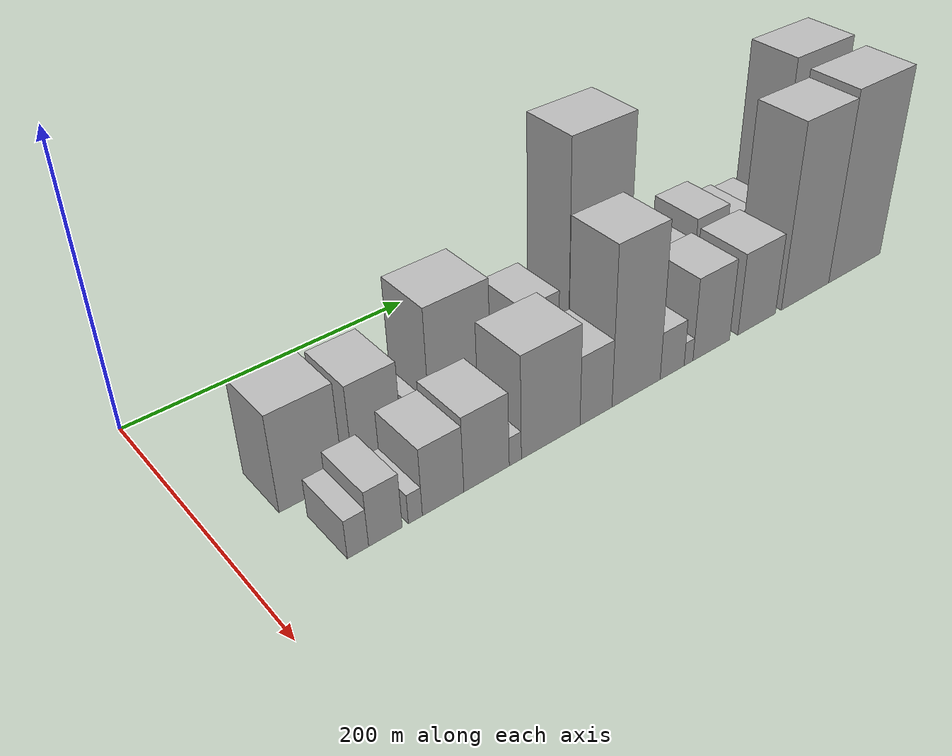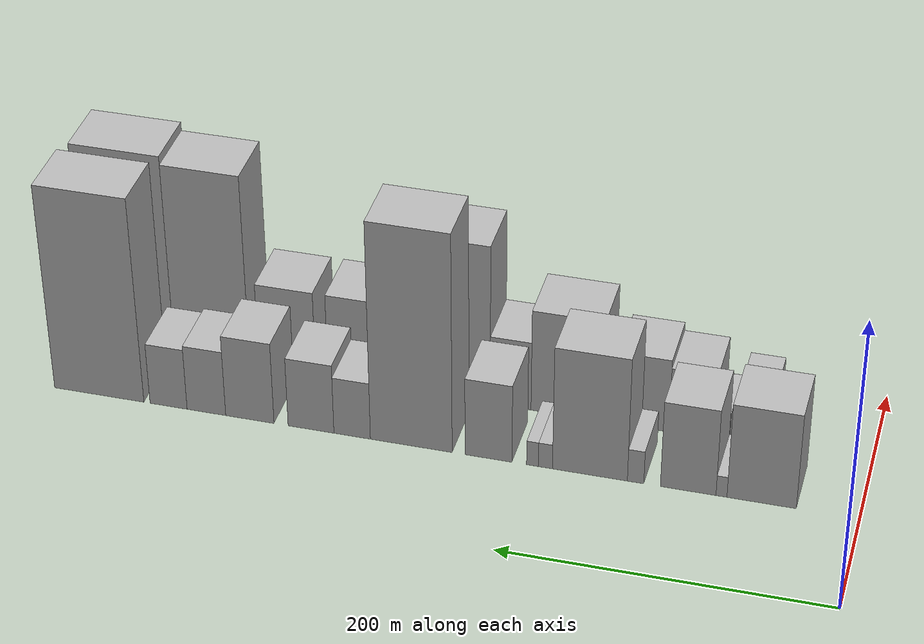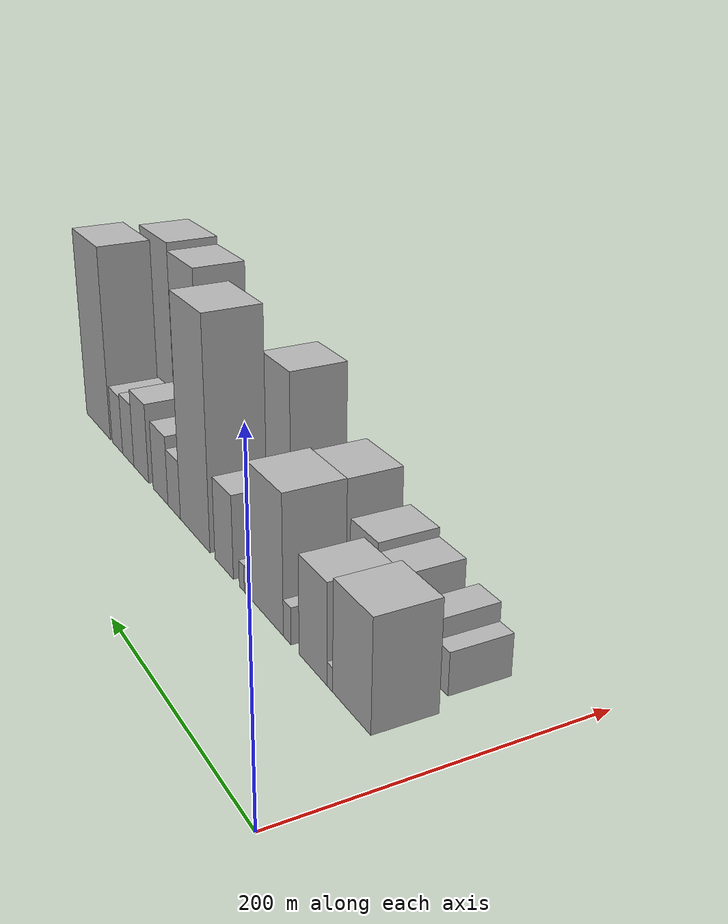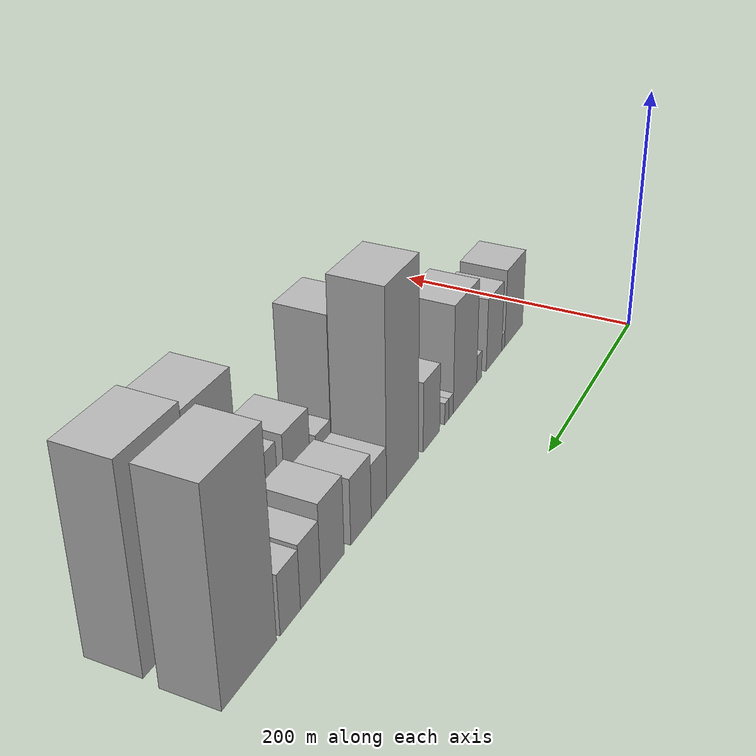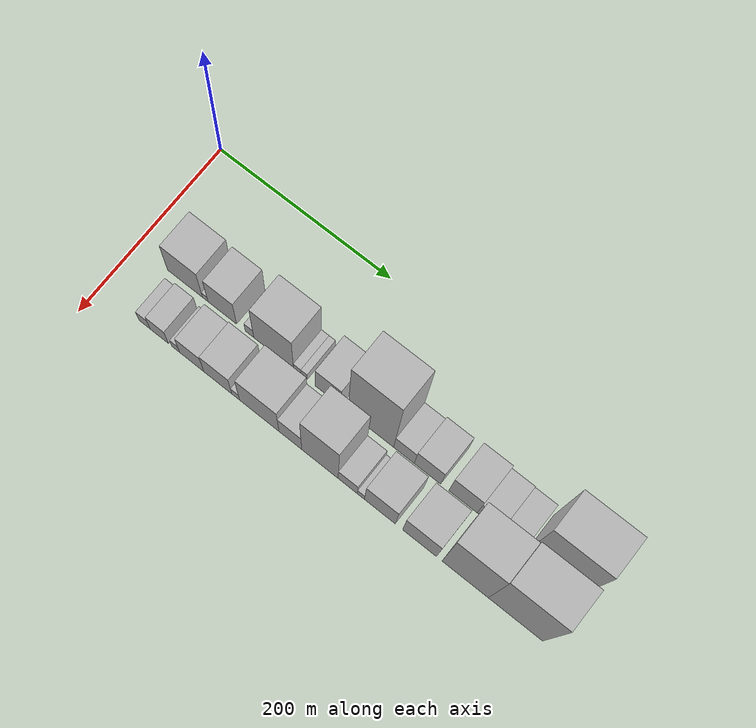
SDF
<sdf version="1.6">
 <world name="default">
  <model name="building_14">
   <static>1</static>
   <pose>100.0000 57.9399 0 0.000000 0.000000 0.000000</pose>
   <link name="link">
    <pose>0 0 34.50 0 0 0</pose>
    <collision name="collision"><geometry><box><size>40.0000 41.1926 69.0000</size></box></geometry></collision>
    <visual name="visual">
     <cast_shadows>0</cast_shadows>
     <geometry><box><size>40.0000 41.1926 69.0000</size></box></geometry>
     <material>
      <script>
       <uri>model://HANNAS_wall/materials/scripts</uri>
       <uri>model://HANNAS_wall/materials/textures</uri>
       <name>vrc/HANNAS_wall</name>
      </script>
     </material>
    </visual>
   </link>
  </model>
  <model name="building_15">
   <static>1</static>
   <pose>100.0000 81.8253 0 0.000000 0.000000 0.000000</pose>
   <link name="link">
    <pose>0 0 7.50 0 0 0</pose>
    <collision name="collision"><geometry><box><size>40.0000 6.5783 15.0000</size></box></geometry></collision>
    <visual name="visual">
     <cast_shadows>0</cast_shadows>
     <geometry><box><size>40.0000 6.5783 15.0000</size></box></geometry>
     <material>
      <script>
       <uri>model://HANNAS_wall/materials/scripts</uri>
       <uri>model://HANNAS_wall/materials/textures</uri>
       <name>vrc/HANNAS_wall</name>
      </script>
     </material>
    </visual>
   </link>
  </model>
  <model name="building_16">
   <static>1</static>
   <pose>100.0000 101.7952 0 0.000000 0.000000 0.000000</pose>
   <link name="link">
    <pose>0 0 31.50 0 0 0</pose>
    <collision name="collision"><geometry><box><size>40.0000 33.3615 63.0000</size></box></geometry></collision>
    <visual name="visual">
     <cast_shadows>0</cast_shadows>
     <geometry><box><size>40.0000 33.3615 63.0000</size></box></geometry>
     <material>
      <script>
       <uri>model://HANNAS_wall/materials/scripts</uri>
       <uri>model://HANNAS_wall/materials/textures</uri>
       <name>vrc/HANNAS_wall</name>
      </script>
     </material>
    </visual>
   </link>
  </model>
  <model name="building_17">
   <static>1</static>
   <pose>100.0000 133.4512 0 0.000000 0.000000 0.000000</pose>
   <link name="link">
    <pose>0 0 12.00 0 0 0</pose>
    <collision name="collision"><geometry><box><size>40.0000 9.9504 24.0000</size></box></geometry></collision>
    <visual name="visual">
     <cast_shadows>0</cast_shadows>
     <geometry><box><size>40.0000 9.9504 24.0000</size></box></geometry>
     <material>
      <script>
       <uri>model://HANNAS_wall/materials/scripts</uri>
       <uri>model://HANNAS_wall/materials/textures</uri>
       <name>vrc/HANNAS_wall</name>
      </script>
     </material>
    </visual>
   </link>
  </model>
  <model name="building_18">
   <static>1</static>
   <pose>100.0000 161.2609 0 0.000000 0.000000 0.000000</pose>
   <link name="link">
    <pose>0 0 45.00 0 0 0</pose>
    <collision name="collision"><geometry><box><size>40.0000 45.6691 90.0000</size></box></geometry></collision>
    <visual name="visual">
     <cast_shadows>0</cast_shadows>
     <geometry><box><size>40.0000 45.6691 90.0000</size></box></geometry>
     <material>
      <script>
       <uri>model://HANNAS_wall/materials/scripts</uri>
       <uri>model://HANNAS_wall/materials/textures</uri>
       <name>vrc/HANNAS_wall</name>
      </script>
     </material>
    </visual>
   </link>
  </model>
  <model name="building_19">
   <static>1</static>
   <pose>100.0000 188.3970 0 0.000000 0.000000 0.000000</pose>
   <link name="link">
    <pose>0 0 9.00 0 0 0</pose>
    <collision name="collision"><geometry><box><size>40.0000 8.6031 18.0000</size></box></geometry></collision>
    <visual name="visual">
     <cast_shadows>0</cast_shadows>
     <geometry><box><size>40.0000 8.6031 18.0000</size></box></geometry>
     <material>
      <script>
       <uri>model://HANNAS_wall/materials/scripts</uri>
       <uri>model://HANNAS_wall/materials/textures</uri>
       <name>vrc/HANNAS_wall</name>
      </script>
     </material>
    </visual>
   </link>
  </model>
  <model name="building_20">
   <static>1</static>
   <pose>100.0000 196.3335 0 0.000000 0.000000 0.000000</pose>
   <link name="link">
    <pose>0 0 9.00 0 0 0</pose>
    <collision name="collision"><geometry><box><size>40.0000 7.2699 18.0000</size></box></geometry></collision>
    <visual name="visual">
     <cast_shadows>0</cast_shadows>
     <geometry><box><size>40.0000 7.2699 18.0000</size></box></geometry>
     <material>
      <script>
       <uri>model://HANNAS_wall/materials/scripts</uri>
       <uri>model://HANNAS_wall/materials/textures</uri>
       <name>vrc/HANNAS_wall</name>
      </script>
     </material>
    </visual>
   </link>
  </model>
  <model name="building_21">
   <static>1</static>
   <pose>100.0000 223.4659 0 0.000000 0.000000 0.000000</pose>
   <link name="link">
    <pose>0 0 28.50 0 0 0</pose>
    <collision name="collision"><geometry><box><size>40.0000 28.9950 57.0000</size></box></geometry></collision>
    <visual name="visual">
     <cast_shadows>0</cast_shadows>
     <geometry><box><size>40.0000 28.9950 57.0000</size></box></geometry>
     <material>
      <script>
       <uri>model://HANNAS_wall/materials/scripts</uri>
       <uri>model://HANNAS_wall/materials/textures</uri>
       <name>vrc/HANNAS_wall</name>
      </script>
     </material>
    </visual>
   </link>
  </model>
  <model name="building_22">
   <static>1</static>
   <pose>100.0000 271.5565 0 0.000000 0.000000 0.000000</pose>
   <link name="link">
    <pose>0 0 79.50 0 0 0</pose>
    <collision name="collision"><geometry><box><size>40.0000 51.1862 159.0000</size></box></geometry></collision>
    <visual name="visual">
     <cast_shadows>0</cast_shadows>
     <geometry><box><size>40.0000 51.1862 159.0000</size></box></geometry>
     <material>
      <script>
       <uri>model://HANNAS_wall/materials/scripts</uri>
       <uri>model://HANNAS_wall/materials/textures</uri>
       <name>vrc/HANNAS_wall</name>
      </script>
     </material>
    </visual>
   </link>
  </model>
  <model name="building_23">
   <static>1</static>
   <pose>100.0000 308.6644 0 0.000000 0.000000 0.000000</pose>
   <link name="link">
    <pose>0 0 21.00 0 0 0</pose>
    <collision name="collision"><geometry><box><size>40.0000 23.0295 42.0000</size></box></geometry></collision>
    <visual name="visual">
     <cast_shadows>0</cast_shadows>
     <geometry><box><size>40.0000 23.0295 42.0000</size></box></geometry>
     <material>
      <script>
       <uri>model://HANNAS_wall/materials/scripts</uri>
       <uri>model://HANNAS_wall/materials/textures</uri>
       <name>vrc/HANNAS_wall</name>
      </script>
     </material>
    </visual>
   </link>
  </model>
  <model name="building_24">
   <static>1</static>
   <pose>100.0000 334.7351 0 0.000000 0.000000 0.000000</pose>
   <link name="link">
    <pose>0 0 25.50 0 0 0</pose>
    <collision name="collision"><geometry><box><size>40.0000 29.1119 51.0000</size></box></geometry></collision>
    <visual name="visual">
     <cast_shadows>0</cast_shadows>
     <geometry><box><size>40.0000 29.1119 51.0000</size></box></geometry>
     <material>
      <script>
       <uri>model://HANNAS_wall/materials/scripts</uri>
       <uri>model://HANNAS_wall/materials/textures</uri>
       <name>vrc/HANNAS_wall</name>
      </script>
     </material>
    </visual>
   </link>
  </model>
  <model name="building_25">
   <static>1</static>
   <pose>100.0000 373.7782 0 0.000000 0.000000 0.000000</pose>
   <link name="link">
    <pose>0 0 30.00 0 0 0</pose>
    <collision name="collision"><geometry><box><size>40.0000 30.9744 60.0000</size></box></geometry></collision>
    <visual name="visual">
     <cast_shadows>0</cast_shadows>
     <geometry><box><size>40.0000 30.9744 60.0000</size></box></geometry>
     <material>
      <script>
       <uri>model://HANNAS_wall/materials/scripts</uri>
       <uri>model://HANNAS_wall/materials/textures</uri>
       <name>vrc/HANNAS_wall</name>
      </script>
     </material>
    </visual>
   </link>
  </model>
  <model name="building_26">
   <static>1</static>
   <pose>100.0000 401.7312 0 0.000000 0.000000 0.000000</pose>
   <link name="link">
    <pose>0 0 24.00 0 0 0</pose>
    <collision name="collision"><geometry><box><size>40.0000 24.9315 48.0000</size></box></geometry></collision>
    <visual name="visual">
     <cast_shadows>0</cast_shadows>
     <geometry><box><size>40.0000 24.9315 48.0000</size></box></geometry>
     <material>
      <script>
       <uri>model://HANNAS_wall/materials/scripts</uri>
       <uri>model://HANNAS_wall/materials/textures</uri>
       <name>vrc/HANNAS_wall</name>
      </script>
     </material>
    </visual>
   </link>
  </model>
  <model name="building_27">
   <static>1</static>
   <pose>100.0000 426.2417 0 0.000000 0.000000 0.000000</pose>
   <link name="link">
    <pose>0 0 22.50 0 0 0</pose>
    <collision name="collision"><geometry><box><size>40.0000 24.0894 45.0000</size></box></geometry></collision>
    <visual name="visual">
     <cast_shadows>0</cast_shadows>
     <geometry><box><size>40.0000 24.0894 45.0000</size></box></geometry>
     <material>
      <script>
       <uri>model://HANNAS_wall/materials/scripts</uri>
       <uri>model://HANNAS_wall/materials/textures</uri>
       <name>vrc/HANNAS_wall</name>
      </script>
     </material>
    </visual>
   </link>
  </model>
  <model name="building_28">
   <static>1</static>
   <pose>100.0000 471.5539 0 0.000000 0.000000 0.000000</pose>
   <link name="link">
    <pose>0 0 75.00 0 0 0</pose>
    <collision name="collision"><geometry><box><size>40.0000 58.5350 150.0000</size></box></geometry></collision>
    <visual name="visual">
     <cast_shadows>0</cast_shadows>
     <geometry><box><size>40.0000 58.5350 150.0000</size></box></geometry>
     <material>
      <script>
       <uri>model://HANNAS_wall/materials/scripts</uri>
       <uri>model://HANNAS_wall/materials/textures</uri>
       <name>vrc/HANNAS_wall</name>
      </script>
     </material>
    </visual>
   </link>
  </model>
  <model name="building_43">
   <static>1</static>
   <pose>152.0000 54.4612 0 0.000000 0.000000 0.000000</pose>
   <link name="link">
    <pose>0 0 13.50 0 0 0</pose>
    <collision name="collision"><geometry><box><size>40.0000 13.1754 27.0000</size></box></geometry></collision>
    <visual name="visual">
     <cast_shadows>0</cast_shadows>
     <geometry><box><size>40.0000 13.1754 27.0000</size></box></geometry>
     <material>
      <script>
       <uri>model://HANNAS_wall/materials/scripts</uri>
       <uri>model://HANNAS_wall/materials/textures</uri>
       <name>vrc/HANNAS_wall</name>
      </script>
     </material>
    </visual>
   </link>
  </model>
  <model name="building_44">
   <static>1</static>
   <pose>152.0000 71.7530 0 0.000000 0.000000 0.000000</pose>
   <link name="link">
    <pose>0 0 19.50 0 0 0</pose>
    <collision name="collision"><geometry><box><size>40.0000 21.4082 39.0000</size></box></geometry></collision>
    <visual name="visual">
     <cast_shadows>0</cast_shadows>
     <geometry><box><size>40.0000 21.4082 39.0000</size></box></geometry>
     <material>
      <script>
       <uri>model://HANNAS_wall/materials/scripts</uri>
       <uri>model://HANNAS_wall/materials/textures</uri>
       <name>vrc/HANNAS_wall</name>
      </script>
     </material>
    </visual>
   </link>
  </model>
  <model name="building_45">
   <static>1</static>
   <pose>152.0000 91.0730 0 0.000000 0.000000 0.000000</pose>
   <link name="link">
    <pose>0 0 10.50 0 0 0</pose>
    <collision name="collision"><geometry><box><size>40.0000 9.2319 21.0000</size></box></geometry></collision>
    <visual name="visual">
     <cast_shadows>0</cast_shadows>
     <geometry><box><size>40.0000 9.2319 21.0000</size></box></geometry>
     <material>
      <script>
       <uri>model://HANNAS_wall/materials/scripts</uri>
       <uri>model://HANNAS_wall/materials/textures</uri>
       <name>vrc/HANNAS_wall</name>
      </script>
     </material>
    </visual>
   </link>
  </model>
  <model name="building_46">
   <static>1</static>
   <pose>152.0000 109.7430 0 0.000000 0.000000 0.000000</pose>
   <link name="link">
    <pose>0 0 24.00 0 0 0</pose>
    <collision name="collision"><geometry><box><size>40.0000 28.1080 48.0000</size></box></geometry></collision>
    <visual name="visual">
     <cast_shadows>0</cast_shadows>
     <geometry><box><size>40.0000 28.1080 48.0000</size></box></geometry>
     <material>
      <script>
       <uri>model://HANNAS_wall/materials/scripts</uri>
       <uri>model://HANNAS_wall/materials/textures</uri>
       <name>vrc/HANNAS_wall</name>
      </script>
     </material>
    </visual>
   </link>
  </model>
  <model name="building_47">
   <static>1</static>
   <pose>152.0000 139.9300 0 0.000000 0.000000 0.000000</pose>
   <link name="link">
    <pose>0 0 27.00 0 0 0</pose>
    <collision name="collision"><geometry><box><size>40.0000 32.2661 54.0000</size></box></geometry></collision>
    <visual name="visual">
     <cast_shadows>0</cast_shadows>
     <geometry><box><size>40.0000 32.2661 54.0000</size></box></geometry>
     <material>
      <script>
       <uri>model://HANNAS_wall/materials/scripts</uri>
       <uri>model://HANNAS_wall/materials/textures</uri>
       <name>vrc/HANNAS_wall</name>
      </script>
     </material>
    </visual>
   </link>
  </model>
  <model name="building_48">
   <static>1</static>
   <pose>152.0000 160.5000 0 0.000000 0.000000 0.000000</pose>
   <link name="link">
    <pose>0 0 10.50 0 0 0</pose>
    <collision name="collision"><geometry><box><size>40.0000 8.8741 21.0000</size></box></geometry></collision>
    <visual name="visual">
     <cast_shadows>0</cast_shadows>
     <geometry><box><size>40.0000 8.8741 21.0000</size></box></geometry>
     <material>
      <script>
       <uri>model://HANNAS_wall/materials/scripts</uri>
       <uri>model://HANNAS_wall/materials/textures</uri>
       <name>vrc/HANNAS_wall</name>
      </script>
     </material>
    </visual>
   </link>
  </model>
  <model name="building_49">
   <static>1</static>
   <pose>152.0000 187.3831 0 0.000000 0.000000 0.000000</pose>
   <link name="link">
    <pose>0 0 37.50 0 0 0</pose>
    <collision name="collision"><geometry><box><size>40.0000 44.8920 75.0000</size></box></geometry></collision>
    <visual name="visual">
     <cast_shadows>0</cast_shadows>
     <geometry><box><size>40.0000 44.8920 75.0000</size></box></geometry>
     <material>
      <script>
       <uri>model://HANNAS_wall/materials/scripts</uri>
       <uri>model://HANNAS_wall/materials/textures</uri>
       <name>vrc/HANNAS_wall</name>
      </script>
     </material>
    </visual>
   </link>
  </model>
  <model name="building_50">
   <static>1</static>
   <pose>152.0000 222.7146 0 0.000000 0.000000 0.000000</pose>
   <link name="link">
    <pose>0 0 25.50 0 0 0</pose>
    <collision name="collision"><geometry><box><size>40.0000 25.7711 51.0000</size></box></geometry></collision>
    <visual name="visual">
     <cast_shadows>0</cast_shadows>
     <geometry><box><size>40.0000 25.7711 51.0000</size></box></geometry>
     <material>
      <script>
       <uri>model://HANNAS_wall/materials/scripts</uri>
       <uri>model://HANNAS_wall/materials/textures</uri>
       <name>vrc/HANNAS_wall</name>
      </script>
     </material>
    </visual>
   </link>
  </model>
  <model name="building_51">
   <static>1</static>
   <pose>152.0000 256.0138 0 0.000000 0.000000 0.000000</pose>
   <link name="link">
    <pose>0 0 58.50 0 0 0</pose>
    <collision name="collision"><geometry><box><size>40.0000 40.8271 117.0000</size></box></geometry></collision>
    <visual name="visual">
     <cast_shadows>0</cast_shadows>
     <geometry><box><size>40.0000 40.8271 117.0000</size></box></geometry>
     <material>
      <script>
       <uri>model://HANNAS_wall/materials/scripts</uri>
       <uri>model://HANNAS_wall/materials/textures</uri>
       <name>vrc/HANNAS_wall</name>
      </script>
     </material>
    </visual>
   </link>
  </model>
  <model name="building_52">
   <static>1</static>
   <pose>152.0000 287.0733 0 0.000000 0.000000 0.000000</pose>
   <link name="link">
    <pose>0 0 18.00 0 0 0</pose>
    <collision name="collision"><geometry><box><size>40.0000 21.2919 36.0000</size></box></geometry></collision>
    <visual name="visual">
     <cast_shadows>0</cast_shadows>
     <geometry><box><size>40.0000 21.2919 36.0000</size></box></geometry>
     <material>
      <script>
       <uri>model://HANNAS_wall/materials/scripts</uri>
       <uri>model://HANNAS_wall/materials/textures</uri>
       <name>vrc/HANNAS_wall</name>
      </script>
     </material>
    </visual>
   </link>
  </model>
  <model name="building_53">
   <static>1</static>
   <pose>152.0000 301.6910 0 0.000000 0.000000 0.000000</pose>
   <link name="link">
    <pose>0 0 9.00 0 0 0</pose>
    <collision name="collision"><geometry><box><size>40.0000 7.9435 18.0000</size></box></geometry></collision>
    <visual name="visual">
     <cast_shadows>0</cast_shadows>
     <geometry><box><size>40.0000 7.9435 18.0000</size></box></geometry>
     <material>
      <script>
       <uri>model://HANNAS_wall/materials/scripts</uri>
       <uri>model://HANNAS_wall/materials/textures</uri>
       <name>vrc/HANNAS_wall</name>
      </script>
     </material>
    </visual>
   </link>
  </model>
  <model name="building_54">
   <static>1</static>
   <pose>152.0000 322.7311 0 0.000000 0.000000 0.000000</pose>
   <link name="link">
    <pose>0 0 31.50 0 0 0</pose>
    <collision name="collision"><geometry><box><size>40.0000 34.1366 63.0000</size></box></geometry></collision>
    <visual name="visual">
     <cast_shadows>0</cast_shadows>
     <geometry><box><size>40.0000 34.1366 63.0000</size></box></geometry>
     <material>
      <script>
       <uri>model://HANNAS_wall/materials/scripts</uri>
       <uri>model://HANNAS_wall/materials/textures</uri>
       <name>vrc/HANNAS_wall</name>
      </script>
     </material>
    </visual>
   </link>
  </model>
  <model name="building_55">
   <static>1</static>
   <pose>152.0000 366.3388 0 0.000000 0.000000 0.000000</pose>
   <link name="link">
    <pose>0 0 31.50 0 0 0</pose>
    <collision name="collision"><geometry><box><size>40.0000 37.0789 63.0000</size></box></geometry></collision>
    <visual name="visual">
     <cast_shadows>0</cast_shadows>
     <geometry><box><size>40.0000 37.0789 63.0000</size></box></geometry>
     <material>
      <script>
       <uri>model://HANNAS_wall/materials/scripts</uri>
       <uri>model://HANNAS_wall/materials/textures</uri>
       <name>vrc/HANNAS_wall</name>
      </script>
     </material>
    </visual>
   </link>
  </model>
  <model name="building_56">
   <static>1</static>
   <pose>152.0000 415.7939 0 0.000000 0.000000 0.000000</pose>
   <link name="link">
    <pose>0 0 70.50 0 0 0</pose>
    <collision name="collision"><geometry><box><size>40.0000 49.8314 141.0000</size></box></geometry></collision>
    <visual name="visual">
     <cast_shadows>0</cast_shadows>
     <geometry><box><size>40.0000 49.8314 141.0000</size></box></geometry>
     <material>
      <script>
       <uri>model://HANNAS_wall/materials/scripts</uri>
       <uri>model://HANNAS_wall/materials/textures</uri>
       <name>vrc/HANNAS_wall</name>
      </script>
     </material>
    </visual>
   </link>
  </model>
  <model name="building_57">
   <static>1</static>
   <pose>152.0000 469.6551 0 0.000000 0.000000 0.000000</pose>
   <link name="link">
    <pose>0 0 73.50 0 0 0</pose>
    <collision name="collision"><geometry><box><size>40.0000 57.8910 147.0000</size></box></geometry></collision>
    <visual name="visual">
     <cast_shadows>0</cast_shadows>
     <geometry><box><size>40.0000 57.8910 147.0000</size></box></geometry>
     <material>
      <script>
       <uri>model://HANNAS_wall/materials/scripts</uri>
       <uri>model://HANNAS_wall/materials/textures</uri>
       <name>vrc/HANNAS_wall</name>
      </script>
     </material>
    </visual>
   </link>
  </model>
 </world>
</sdf>
